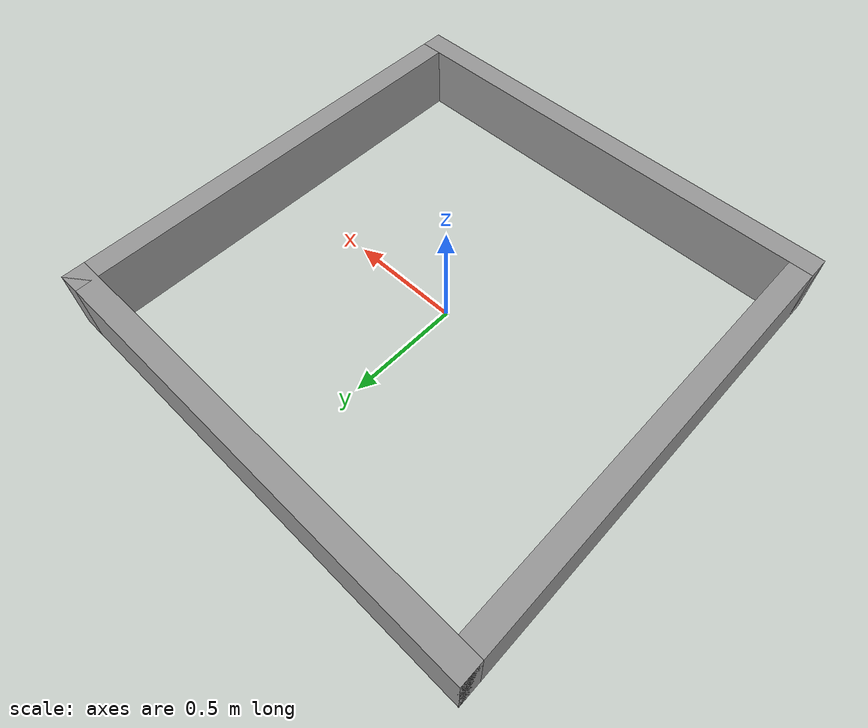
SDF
<?xml version="1.0" ?>
<sdf version="1.5">
<model name="arena_2m">
    <static>true</static>
    <link name="north_wall">
      <pose>0 1 0.15 0 0 0</pose>
      <visual name="visual">
        <cast_shadows>false</cast_shadows>
        <geometry>
          <box>
            <size>2.1 0.1 .3</size>
          </box>
        </geometry>
        <material>
          <script>
            <name>Gazebo/Grey</name>
            <uri>file://media/materials/scripts/gazebo.material</uri>
          </script>
        </material>
      </visual>
      <collision name="collision">
        <geometry>
          <box>
            <size>2.1 0.1 0.3</size>
          </box>
        </geometry>
      </collision>
    </link>
    <link name="south_wall">
      <pose>0 -1 0.15 0 0 0</pose>
      <visual name="visual">
        <cast_shadows>false</cast_shadows>
        <geometry>
          <box>
            <size>2.1 0.1 0.3</size>
          </box>
        </geometry>
        <material>
          <script>
            <name>Gazebo/Grey</name>
            <uri>file://media/materials/scripts/gazebo.material</uri>
          </script>
        </material>
      </visual>
      <collision name="collision">
        <geometry>
          <box>
            <size>2.1 0.1 0.3</size>
          </box>
        </geometry>
      </collision>
    </link>
    <link name="east_wall">
      <pose>1 0 0.15 0 0 0</pose>
      <visual name="visual">
        <cast_shadows>false</cast_shadows>
        <geometry>
          <box>
            <size>0.1 2.1 0.3</size>
          </box>
        </geometry>
        <material>
          <script>
            <name>Gazebo/Grey</name>
            <uri>file://media/materials/scripts/gazebo.material</uri>
          </script>
        </material>
      </visual>
      <collision name="collision">
        <geometry>
          <box>
            <size>0.1 2.1 0.3</size>
          </box>
        </geometry>
      </collision>
    </link>
    <link name="west_wall">
      <pose>-1 0 0.15 0 0 0</pose>
      <visual name="visual">
        <cast_shadows>false</cast_shadows>
        <geometry>
          <box>
            <size>0.1 2.1 0.3</size>
          </box>
        </geometry>
        <material>
          <script>
            <name>Gazebo/Grey</name>
            <uri>file://media/materials/scripts/gazebo.material</uri>
          </script>
        </material>
      </visual>
      <collision name="collision">
        <geometry>
          <box>
            <size>0.1 2.1 0.3</size>
          </box>
        </geometry>
      </collision>
    </link>
  </model>
</sdf>
